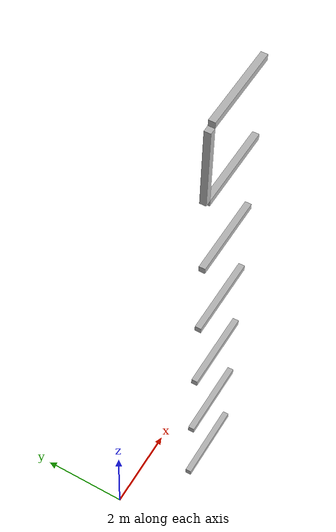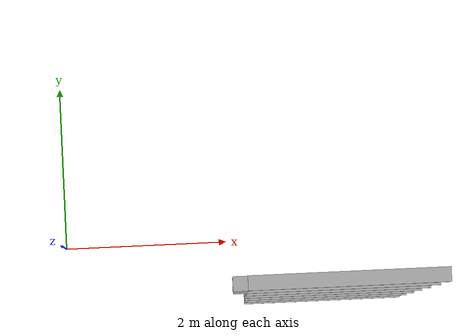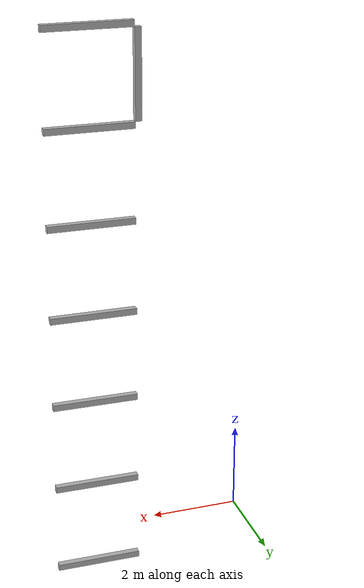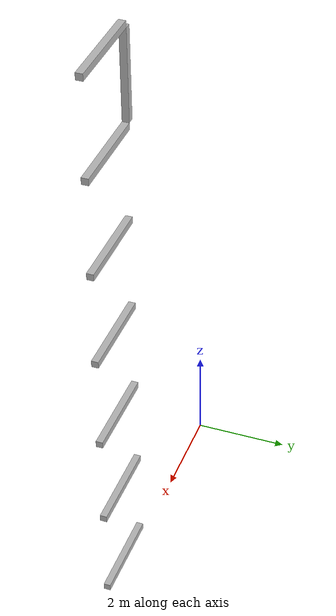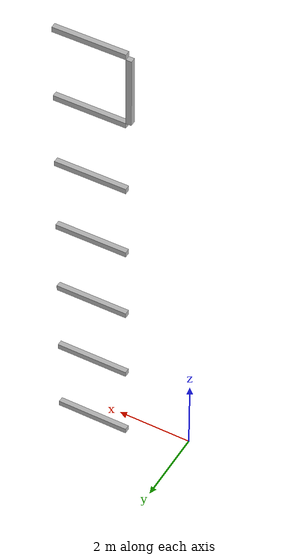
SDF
<sdf version="1.7">
 <world name="default">
  <model name="orthogonal_747_2.000.15_TS">
   <static>1</static>
   <link name="x_link_0_2_4">
    <inertial>
     <mass>1</mass>
     <inertia>
      <ixx>0.166667</ixx>
      <ixy>0</ixy>
      <ixz>0</ixz>
      <iyy>0.166667</iyy>
      <iyz>0</iyz>
      <izz>0.166667</izz>
     </inertia>
    </inertial>
    <pose>9.675 4.3 1.075 0 -0 0</pose>
    <visual name="visual_0">
     <laser_retro>407</laser_retro>
     <geometry><box><size>2 1e-06 0.15</size></box></geometry>
     <material>
      <script><name>Gazebo/Grey</name><uri>file://media/materials/scripts/gazebo.material</uri></script>
      <shader type="pixel"><normal_map>__default__</normal_map></shader>
      <ambient>0.678 0.498 0.659 1</ambient>
      <diffuse>0.7 0.7 0.7 1</diffuse>
      <specular>0.01 0.01 0.01 1</specular>
      <emissive>0 0 0 1</emissive>
     </material>
     <pose>0 -0.075 0 0 -0 0</pose>
     <transparency>1</transparency>
    </visual>
    <visual name="visual_1">
     <laser_retro>408</laser_retro>
     <geometry><box><size>2 1e-06 0.15</size></box></geometry>
     <material>
      <script><name>Gazebo/Grey</name><uri>file://media/materials/scripts/gazebo.material</uri></script>
      <shader type="pixel"><normal_map>__default__</normal_map></shader>
      <ambient>0.447 0.624 0.812 1</ambient>
      <diffuse>0.7 0.7 0.7 1</diffuse>
      <specular>0.01 0.01 0.01 1</specular>
      <emissive>0 0 0 1</emissive>
     </material>
     <pose>0 0.075 0 0 -0 0</pose>
     <transparency>1</transparency>
    </visual>
    <visual name="visual_2">
     <laser_retro>409</laser_retro>
     <geometry><box><size>2 0.15 1e-06</size></box></geometry>
     <material>
      <script><name>Gazebo/Grey</name><uri>file://media/materials/scripts/gazebo.material</uri></script>
      <shader type="pixel"><normal_map>__default__</normal_map></shader>
      <ambient>0.988 0.686 0.243 1</ambient>
      <diffuse>0.7 0.7 0.7 1</diffuse>
      <specular>0.01 0.01 0.01 1</specular>
      <emissive>0 0 0 1</emissive>
     </material>
     <pose>0 0 -0.075 0 -0 0</pose>
     <transparency>1</transparency>
    </visual>
    <visual name="visual_3">
     <laser_retro>410</laser_retro>
     <geometry><box><size>1e-06 0.15 0.15</size></box></geometry>
     <material>
      <script><name>Gazebo/Grey</name><uri>file://media/materials/scripts/gazebo.material</uri></script>
      <shader type="pixel"><normal_map>__default__</normal_map></shader>
      <ambient>0.988 0.914 0.31 1</ambient>
      <diffuse>0.7 0.7 0.7 1</diffuse>
      <specular>0.01 0.01 0.01 1</specular>
      <emissive>0 0 0 1</emissive>
     </material>
     <pose>1 0 0 0 -0 0</pose>
     <transparency>1</transparency>
    </visual>
    <visual name="visual_4">
     <laser_retro>411</laser_retro>
     <geometry><box><size>2 0.15 1e-06</size></box></geometry>
     <material>
      <script><name>Gazebo/Grey</name><uri>file://media/materials/scripts/gazebo.material</uri></script>
      <shader type="pixel"><normal_map>__default__</normal_map></shader>
      <ambient>0.937 0.161 0.161 1</ambient>
      <diffuse>0.7 0.7 0.7 1</diffuse>
      <specular>0.01 0.01 0.01 1</specular>
      <emissive>0 0 0 1</emissive>
     </material>
     <pose>0 0 0.075 0 -0 0</pose>
     <transparency>1</transparency>
    </visual>
    <visual name="visual_5">
     <laser_retro>412</laser_retro>
     <geometry><box><size>1e-06 0.15 0.15</size></box></geometry>
     <material>
      <script><name>Gazebo/Grey</name><uri>file://media/materials/scripts/gazebo.material</uri></script>
      <shader type="pixel"><normal_map>__default__</normal_map></shader>
      <ambient>0.541 0.886 0.204 1</ambient>
      <diffuse>0.7 0.7 0.7 1</diffuse>
      <specular>0.01 0.01 0.01 1</specular>
      <emissive>0 0 0 1</emissive>
     </material>
     <pose>-1 0 0 0 -0 0</pose>
     <transparency>1</transparency>
    </visual>
    <visual name="visual_texture">
     <geometry><box><size>1.9998 0.149985 0.149985</size></box></geometry>
     <material>
      <script>
       <uri>model://BASE_MODELS/simple_block_v2_textured/materials/scripts</uri>
       <uri>model://BASE_MODELS/simple_block_v2_textured/materials/textures</uri>
       <name>metal</name>
      </script>
     </material>
     <laser_retro>413</laser_retro>
    </visual>
    <collision name="collision">
     <geometry><box><size>2 0.15 0.15</size></box></geometry>
     <surface>
      <friction>
       <ode><mu>1</mu><mu2>1</mu2><fdir1>0 0 0</fdir1><slip1>0</slip1><slip2>0</slip2></ode>
       <torsional>
        <coefficient>1</coefficient>
        <patch_radius>0</patch_radius>
        <surface_radius>0</surface_radius>
        <use_patch_radius>1</use_patch_radius>
        <ode><slip>0</slip></ode>
       </torsional>
      </friction>
      <bounce><restitution_coefficient>0</restitution_coefficient><threshold>1e+06</threshold></bounce>
      <contact>
       <collide_without_contact>0</collide_without_contact>
       <collide_without_contact_bitmask>1</collide_without_contact_bitmask>
       <collide_bitmask>1</collide_bitmask>
       <ode>
        <soft_cfm>0</soft_cfm>
        <soft_erp>0.2</soft_erp>
        <kp>1e+13</kp>
        <kd>1</kd>
        <max_vel>0.01</max_vel>
        <min_depth>0</min_depth>
       </ode>
       <bullet>
        <split_impulse>1</split_impulse>
        <split_impulse_penetration_threshold>-0.01</split_impulse_penetration_threshold>
        <soft_cfm>0</soft_cfm>
        <soft_erp>0.2</soft_erp>
        <kp>1e+13</kp>
        <kd>1</kd>
       </bullet>
      </contact>
     </surface>
    </collision>
   </link>
   <link name="x_link_1_2_4">
    <inertial>
     <mass>1</mass>
     <inertia>
      <ixx>0.166667</ixx>
      <ixy>0</ixy>
      <ixz>0</ixz>
      <iyy>0.166667</iyy>
      <iyz>0</iyz>
      <izz>0.166667</izz>
     </inertia>
    </inertial>
    <pose>9.675 4.3 3.225 0 -0 0</pose>
    <visual name="visual_0">
     <laser_retro>1233</laser_retro>
     <geometry><box><size>2 1e-06 0.15</size></box></geometry>
     <material>
      <script><name>Gazebo/Grey</name><uri>file://media/materials/scripts/gazebo.material</uri></script>
      <shader type="pixel"><normal_map>__default__</normal_map></shader>
      <ambient>0.678 0.498 0.659 1</ambient>
      <diffuse>0.7 0.7 0.7 1</diffuse>
      <specular>0.01 0.01 0.01 1</specular>
      <emissive>0 0 0 1</emissive>
     </material>
     <pose>0 -0.075 0 0 -0 0</pose>
     <transparency>1</transparency>
    </visual>
    <visual name="visual_1">
     <laser_retro>1234</laser_retro>
     <geometry><box><size>2 1e-06 0.15</size></box></geometry>
     <material>
      <script><name>Gazebo/Grey</name><uri>file://media/materials/scripts/gazebo.material</uri></script>
      <shader type="pixel"><normal_map>__default__</normal_map></shader>
      <ambient>0.447 0.624 0.812 1</ambient>
      <diffuse>0.7 0.7 0.7 1</diffuse>
      <specular>0.01 0.01 0.01 1</specular>
      <emissive>0 0 0 1</emissive>
     </material>
     <pose>0 0.075 0 0 -0 0</pose>
     <transparency>1</transparency>
    </visual>
    <visual name="visual_2">
     <laser_retro>1235</laser_retro>
     <geometry><box><size>2 0.15 1e-06</size></box></geometry>
     <material>
      <script><name>Gazebo/Grey</name><uri>file://media/materials/scripts/gazebo.material</uri></script>
      <shader type="pixel"><normal_map>__default__</normal_map></shader>
      <ambient>0.988 0.686 0.243 1</ambient>
      <diffuse>0.7 0.7 0.7 1</diffuse>
      <specular>0.01 0.01 0.01 1</specular>
      <emissive>0 0 0 1</emissive>
     </material>
     <pose>0 0 -0.075 0 -0 0</pose>
     <transparency>1</transparency>
    </visual>
    <visual name="visual_3">
     <laser_retro>1236</laser_retro>
     <geometry><box><size>1e-06 0.15 0.15</size></box></geometry>
     <material>
      <script><name>Gazebo/Grey</name><uri>file://media/materials/scripts/gazebo.material</uri></script>
      <shader type="pixel"><normal_map>__default__</normal_map></shader>
      <ambient>0.988 0.914 0.31 1</ambient>
      <diffuse>0.7 0.7 0.7 1</diffuse>
      <specular>0.01 0.01 0.01 1</specular>
      <emissive>0 0 0 1</emissive>
     </material>
     <pose>1 0 0 0 -0 0</pose>
     <transparency>1</transparency>
    </visual>
    <visual name="visual_4">
     <laser_retro>1237</laser_retro>
     <geometry><box><size>2 0.15 1e-06</size></box></geometry>
     <material>
      <script><name>Gazebo/Grey</name><uri>file://media/materials/scripts/gazebo.material</uri></script>
      <shader type="pixel"><normal_map>__default__</normal_map></shader>
      <ambient>0.937 0.161 0.161 1</ambient>
      <diffuse>0.7 0.7 0.7 1</diffuse>
      <specular>0.01 0.01 0.01 1</specular>
      <emissive>0 0 0 1</emissive>
     </material>
     <pose>0 0 0.075 0 -0 0</pose>
     <transparency>1</transparency>
    </visual>
    <visual name="visual_5">
     <laser_retro>1238</laser_retro>
     <geometry><box><size>1e-06 0.15 0.15</size></box></geometry>
     <material>
      <script><name>Gazebo/Grey</name><uri>file://media/materials/scripts/gazebo.material</uri></script>
      <shader type="pixel"><normal_map>__default__</normal_map></shader>
      <ambient>0.541 0.886 0.204 1</ambient>
      <diffuse>0.7 0.7 0.7 1</diffuse>
      <specular>0.01 0.01 0.01 1</specular>
      <emissive>0 0 0 1</emissive>
     </material>
     <pose>-1 0 0 0 -0 0</pose>
     <transparency>1</transparency>
    </visual>
    <visual name="visual_texture">
     <geometry><box><size>1.9998 0.149985 0.149985</size></box></geometry>
     <material>
      <script>
       <uri>model://BASE_MODELS/simple_block_v2_textured/materials/scripts</uri>
       <uri>model://BASE_MODELS/simple_block_v2_textured/materials/textures</uri>
       <name>metal</name>
      </script>
     </material>
     <laser_retro>1239</laser_retro>
    </visual>
    <collision name="collision">
     <geometry><box><size>2 0.15 0.15</size></box></geometry>
     <surface>
      <friction>
       <ode><mu>1</mu><mu2>1</mu2><fdir1>0 0 0</fdir1><slip1>0</slip1><slip2>0</slip2></ode>
       <torsional>
        <coefficient>1</coefficient>
        <patch_radius>0</patch_radius>
        <surface_radius>0</surface_radius>
        <use_patch_radius>1</use_patch_radius>
        <ode><slip>0</slip></ode>
       </torsional>
      </friction>
      <bounce><restitution_coefficient>0</restitution_coefficient><threshold>1e+06</threshold></bounce>
      <contact>
       <collide_without_contact>0</collide_without_contact>
       <collide_without_contact_bitmask>1</collide_without_contact_bitmask>
       <collide_bitmask>1</collide_bitmask>
       <ode>
        <soft_cfm>0</soft_cfm>
        <soft_erp>0.2</soft_erp>
        <kp>1e+13</kp>
        <kd>1</kd>
        <max_vel>0.01</max_vel>
        <min_depth>0</min_depth>
       </ode>
       <bullet>
        <split_impulse>1</split_impulse>
        <split_impulse_penetration_threshold>-0.01</split_impulse_penetration_threshold>
        <soft_cfm>0</soft_cfm>
        <soft_erp>0.2</soft_erp>
        <kp>1e+13</kp>
        <kd>1</kd>
       </bullet>
      </contact>
     </surface>
    </collision>
   </link>
   <link name="x_link_2_2_4">
    <inertial>
     <mass>1</mass>
     <inertia>
      <ixx>0.166667</ixx>
      <ixy>0</ixy>
      <ixz>0</ixz>
      <iyy>0.166667</iyy>
      <iyz>0</iyz>
      <izz>0.166667</izz>
     </inertia>
    </inertial>
    <pose>9.675 4.3 5.375 0 -0 0</pose>
    <visual name="visual_0">
     <laser_retro>2136</laser_retro>
     <geometry><box><size>2 1e-06 0.15</size></box></geometry>
     <material>
      <script><name>Gazebo/Grey</name><uri>file://media/materials/scripts/gazebo.material</uri></script>
      <shader type="pixel"><normal_map>__default__</normal_map></shader>
      <ambient>0.678 0.498 0.659 1</ambient>
      <diffuse>0.7 0.7 0.7 1</diffuse>
      <specular>0.01 0.01 0.01 1</specular>
      <emissive>0 0 0 1</emissive>
     </material>
     <pose>0 -0.075 0 0 -0 0</pose>
     <transparency>1</transparency>
    </visual>
    <visual name="visual_1">
     <laser_retro>2137</laser_retro>
     <geometry><box><size>2 1e-06 0.15</size></box></geometry>
     <material>
      <script><name>Gazebo/Grey</name><uri>file://media/materials/scripts/gazebo.material</uri></script>
      <shader type="pixel"><normal_map>__default__</normal_map></shader>
      <ambient>0.447 0.624 0.812 1</ambient>
      <diffuse>0.7 0.7 0.7 1</diffuse>
      <specular>0.01 0.01 0.01 1</specular>
      <emissive>0 0 0 1</emissive>
     </material>
     <pose>0 0.075 0 0 -0 0</pose>
     <transparency>1</transparency>
    </visual>
    <visual name="visual_2">
     <laser_retro>2138</laser_retro>
     <geometry><box><size>2 0.15 1e-06</size></box></geometry>
     <material>
      <script><name>Gazebo/Grey</name><uri>file://media/materials/scripts/gazebo.material</uri></script>
      <shader type="pixel"><normal_map>__default__</normal_map></shader>
      <ambient>0.988 0.686 0.243 1</ambient>
      <diffuse>0.7 0.7 0.7 1</diffuse>
      <specular>0.01 0.01 0.01 1</specular>
      <emissive>0 0 0 1</emissive>
     </material>
     <pose>0 0 -0.075 0 -0 0</pose>
     <transparency>1</transparency>
    </visual>
    <visual name="visual_3">
     <laser_retro>2139</laser_retro>
     <geometry><box><size>1e-06 0.15 0.15</size></box></geometry>
     <material>
      <script><name>Gazebo/Grey</name><uri>file://media/materials/scripts/gazebo.material</uri></script>
      <shader type="pixel"><normal_map>__default__</normal_map></shader>
      <ambient>0.988 0.914 0.31 1</ambient>
      <diffuse>0.7 0.7 0.7 1</diffuse>
      <specular>0.01 0.01 0.01 1</specular>
      <emissive>0 0 0 1</emissive>
     </material>
     <pose>1 0 0 0 -0 0</pose>
     <transparency>1</transparency>
    </visual>
    <visual name="visual_4">
     <laser_retro>2140</laser_retro>
     <geometry><box><size>2 0.15 1e-06</size></box></geometry>
     <material>
      <script><name>Gazebo/Grey</name><uri>file://media/materials/scripts/gazebo.material</uri></script>
      <shader type="pixel"><normal_map>__default__</normal_map></shader>
      <ambient>0.937 0.161 0.161 1</ambient>
      <diffuse>0.7 0.7 0.7 1</diffuse>
      <specular>0.01 0.01 0.01 1</specular>
      <emissive>0 0 0 1</emissive>
     </material>
     <pose>0 0 0.075 0 -0 0</pose>
     <transparency>1</transparency>
    </visual>
    <visual name="visual_5">
     <laser_retro>2141</laser_retro>
     <geometry><box><size>1e-06 0.15 0.15</size></box></geometry>
     <material>
      <script><name>Gazebo/Grey</name><uri>file://media/materials/scripts/gazebo.material</uri></script>
      <shader type="pixel"><normal_map>__default__</normal_map></shader>
      <ambient>0.541 0.886 0.204 1</ambient>
      <diffuse>0.7 0.7 0.7 1</diffuse>
      <specular>0.01 0.01 0.01 1</specular>
      <emissive>0 0 0 1</emissive>
     </material>
     <pose>-1 0 0 0 -0 0</pose>
     <transparency>1</transparency>
    </visual>
    <visual name="visual_texture">
     <geometry><box><size>1.9998 0.149985 0.149985</size></box></geometry>
     <material>
      <script>
       <uri>model://BASE_MODELS/simple_block_v2_textured/materials/scripts</uri>
       <uri>model://BASE_MODELS/simple_block_v2_textured/materials/textures</uri>
       <name>metal</name>
      </script>
     </material>
     <laser_retro>2142</laser_retro>
    </visual>
    <collision name="collision">
     <geometry><box><size>2 0.15 0.15</size></box></geometry>
     <surface>
      <friction>
       <ode><mu>1</mu><mu2>1</mu2><fdir1>0 0 0</fdir1><slip1>0</slip1><slip2>0</slip2></ode>
       <torsional>
        <coefficient>1</coefficient>
        <patch_radius>0</patch_radius>
        <surface_radius>0</surface_radius>
        <use_patch_radius>1</use_patch_radius>
        <ode><slip>0</slip></ode>
       </torsional>
      </friction>
      <bounce><restitution_coefficient>0</restitution_coefficient><threshold>1e+06</threshold></bounce>
      <contact>
       <collide_without_contact>0</collide_without_contact>
       <collide_without_contact_bitmask>1</collide_without_contact_bitmask>
       <collide_bitmask>1</collide_bitmask>
       <ode>
        <soft_cfm>0</soft_cfm>
        <soft_erp>0.2</soft_erp>
        <kp>1e+13</kp>
        <kd>1</kd>
        <max_vel>0.01</max_vel>
        <min_depth>0</min_depth>
       </ode>
       <bullet>
        <split_impulse>1</split_impulse>
        <split_impulse_penetration_threshold>-0.01</split_impulse_penetration_threshold>
        <soft_cfm>0</soft_cfm>
        <soft_erp>0.2</soft_erp>
        <kp>1e+13</kp>
        <kd>1</kd>
       </bullet>
      </contact>
     </surface>
    </collision>
   </link>
   <link name="x_link_3_2_4">
    <inertial>
     <mass>1</mass>
     <inertia>
      <ixx>0.166667</ixx>
      <ixy>0</ixy>
      <ixz>0</ixz>
      <iyy>0.166667</iyy>
      <iyz>0</iyz>
      <izz>0.166667</izz>
     </inertia>
    </inertial>
    <pose>9.675 4.3 7.525 0 -0 0</pose>
    <visual name="visual_0">
     <laser_retro>3039</laser_retro>
     <geometry><box><size>2 1e-06 0.15</size></box></geometry>
     <material>
      <script><name>Gazebo/Grey</name><uri>file://media/materials/scripts/gazebo.material</uri></script>
      <shader type="pixel"><normal_map>__default__</normal_map></shader>
      <ambient>0.678 0.498 0.659 1</ambient>
      <diffuse>0.7 0.7 0.7 1</diffuse>
      <specular>0.01 0.01 0.01 1</specular>
      <emissive>0 0 0 1</emissive>
     </material>
     <pose>0 -0.075 0 0 -0 0</pose>
     <transparency>1</transparency>
    </visual>
    <visual name="visual_1">
     <laser_retro>3040</laser_retro>
     <geometry><box><size>2 1e-06 0.15</size></box></geometry>
     <material>
      <script><name>Gazebo/Grey</name><uri>file://media/materials/scripts/gazebo.material</uri></script>
      <shader type="pixel"><normal_map>__default__</normal_map></shader>
      <ambient>0.447 0.624 0.812 1</ambient>
      <diffuse>0.7 0.7 0.7 1</diffuse>
      <specular>0.01 0.01 0.01 1</specular>
      <emissive>0 0 0 1</emissive>
     </material>
     <pose>0 0.075 0 0 -0 0</pose>
     <transparency>1</transparency>
    </visual>
    <visual name="visual_2">
     <laser_retro>3041</laser_retro>
     <geometry><box><size>2 0.15 1e-06</size></box></geometry>
     <material>
      <script><name>Gazebo/Grey</name><uri>file://media/materials/scripts/gazebo.material</uri></script>
      <shader type="pixel"><normal_map>__default__</normal_map></shader>
      <ambient>0.988 0.686 0.243 1</ambient>
      <diffuse>0.7 0.7 0.7 1</diffuse>
      <specular>0.01 0.01 0.01 1</specular>
      <emissive>0 0 0 1</emissive>
     </material>
     <pose>0 0 -0.075 0 -0 0</pose>
     <transparency>1</transparency>
    </visual>
    <visual name="visual_3">
     <laser_retro>3042</laser_retro>
     <geometry><box><size>1e-06 0.15 0.15</size></box></geometry>
     <material>
      <script><name>Gazebo/Grey</name><uri>file://media/materials/scripts/gazebo.material</uri></script>
      <shader type="pixel"><normal_map>__default__</normal_map></shader>
      <ambient>0.988 0.914 0.31 1</ambient>
      <diffuse>0.7 0.7 0.7 1</diffuse>
      <specular>0.01 0.01 0.01 1</specular>
      <emissive>0 0 0 1</emissive>
     </material>
     <pose>1 0 0 0 -0 0</pose>
     <transparency>1</transparency>
    </visual>
    <visual name="visual_4">
     <laser_retro>3043</laser_retro>
     <geometry><box><size>2 0.15 1e-06</size></box></geometry>
     <material>
      <script><name>Gazebo/Grey</name><uri>file://media/materials/scripts/gazebo.material</uri></script>
      <shader type="pixel"><normal_map>__default__</normal_map></shader>
      <ambient>0.937 0.161 0.161 1</ambient>
      <diffuse>0.7 0.7 0.7 1</diffuse>
      <specular>0.01 0.01 0.01 1</specular>
      <emissive>0 0 0 1</emissive>
     </material>
     <pose>0 0 0.075 0 -0 0</pose>
     <transparency>1</transparency>
    </visual>
    <visual name="visual_5">
     <laser_retro>3044</laser_retro>
     <geometry><box><size>1e-06 0.15 0.15</size></box></geometry>
     <material>
      <script><name>Gazebo/Grey</name><uri>file://media/materials/scripts/gazebo.material</uri></script>
      <shader type="pixel"><normal_map>__default__</normal_map></shader>
      <ambient>0.541 0.886 0.204 1</ambient>
      <diffuse>0.7 0.7 0.7 1</diffuse>
      <specular>0.01 0.01 0.01 1</specular>
      <emissive>0 0 0 1</emissive>
     </material>
     <pose>-1 0 0 0 -0 0</pose>
     <transparency>1</transparency>
    </visual>
    <visual name="visual_texture">
     <geometry><box><size>1.9998 0.149985 0.149985</size></box></geometry>
     <material>
      <script>
       <uri>model://BASE_MODELS/simple_block_v2_textured/materials/scripts</uri>
       <uri>model://BASE_MODELS/simple_block_v2_textured/materials/textures</uri>
       <name>metal</name>
      </script>
     </material>
     <laser_retro>3045</laser_retro>
    </visual>
    <collision name="collision">
     <geometry><box><size>2 0.15 0.15</size></box></geometry>
     <surface>
      <friction>
       <ode><mu>1</mu><mu2>1</mu2><fdir1>0 0 0</fdir1><slip1>0</slip1><slip2>0</slip2></ode>
       <torsional>
        <coefficient>1</coefficient>
        <patch_radius>0</patch_radius>
        <surface_radius>0</surface_radius>
        <use_patch_radius>1</use_patch_radius>
        <ode><slip>0</slip></ode>
       </torsional>
      </friction>
      <bounce><restitution_coefficient>0</restitution_coefficient><threshold>1e+06</threshold></bounce>
      <contact>
       <collide_without_contact>0</collide_without_contact>
       <collide_without_contact_bitmask>1</collide_without_contact_bitmask>
       <collide_bitmask>1</collide_bitmask>
       <ode>
        <soft_cfm>0</soft_cfm>
        <soft_erp>0.2</soft_erp>
        <kp>1e+13</kp>
        <kd>1</kd>
        <max_vel>0.01</max_vel>
        <min_depth>0</min_depth>
       </ode>
       <bullet>
        <split_impulse>1</split_impulse>
        <split_impulse_penetration_threshold>-0.01</split_impulse_penetration_threshold>
        <soft_cfm>0</soft_cfm>
        <soft_erp>0.2</soft_erp>
        <kp>1e+13</kp>
        <kd>1</kd>
       </bullet>
      </contact>
     </surface>
    </collision>
   </link>
   <link name="x_link_4_2_4">
    <inertial>
     <mass>1</mass>
     <inertia>
      <ixx>0.166667</ixx>
      <ixy>0</ixy>
      <ixz>0</ixz>
      <iyy>0.166667</iyy>
      <iyz>0</iyz>
      <izz>0.166667</izz>
     </inertia>
    </inertial>
    <pose>9.675 4.3 9.675 0 -0 0</pose>
    <visual name="visual_0">
     <laser_retro>3942</laser_retro>
     <geometry><box><size>2 1e-06 0.15</size></box></geometry>
     <material>
      <script><name>Gazebo/Grey</name><uri>file://media/materials/scripts/gazebo.material</uri></script>
      <shader type="pixel"><normal_map>__default__</normal_map></shader>
      <ambient>0.678 0.498 0.659 1</ambient>
      <diffuse>0.7 0.7 0.7 1</diffuse>
      <specular>0.01 0.01 0.01 1</specular>
      <emissive>0 0 0 1</emissive>
     </material>
     <pose>0 -0.075 0 0 -0 0</pose>
     <transparency>1</transparency>
    </visual>
    <visual name="visual_1">
     <laser_retro>3943</laser_retro>
     <geometry><box><size>2 1e-06 0.15</size></box></geometry>
     <material>
      <script><name>Gazebo/Grey</name><uri>file://media/materials/scripts/gazebo.material</uri></script>
      <shader type="pixel"><normal_map>__default__</normal_map></shader>
      <ambient>0.447 0.624 0.812 1</ambient>
      <diffuse>0.7 0.7 0.7 1</diffuse>
      <specular>0.01 0.01 0.01 1</specular>
      <emissive>0 0 0 1</emissive>
     </material>
     <pose>0 0.075 0 0 -0 0</pose>
     <transparency>1</transparency>
    </visual>
    <visual name="visual_2">
     <laser_retro>3944</laser_retro>
     <geometry><box><size>2 0.15 1e-06</size></box></geometry>
     <material>
      <script><name>Gazebo/Grey</name><uri>file://media/materials/scripts/gazebo.material</uri></script>
      <shader type="pixel"><normal_map>__default__</normal_map></shader>
      <ambient>0.988 0.686 0.243 1</ambient>
      <diffuse>0.7 0.7 0.7 1</diffuse>
      <specular>0.01 0.01 0.01 1</specular>
      <emissive>0 0 0 1</emissive>
     </material>
     <pose>0 0 -0.075 0 -0 0</pose>
     <transparency>1</transparency>
    </visual>
    <visual name="visual_3">
     <laser_retro>3945</laser_retro>
     <geometry><box><size>1e-06 0.15 0.15</size></box></geometry>
     <material>
      <script><name>Gazebo/Grey</name><uri>file://media/materials/scripts/gazebo.material</uri></script>
      <shader type="pixel"><normal_map>__default__</normal_map></shader>
      <ambient>0.988 0.914 0.31 1</ambient>
      <diffuse>0.7 0.7 0.7 1</diffuse>
      <specular>0.01 0.01 0.01 1</specular>
      <emissive>0 0 0 1</emissive>
     </material>
     <pose>1 0 0 0 -0 0</pose>
     <transparency>1</transparency>
    </visual>
    <visual name="visual_4">
     <laser_retro>3946</laser_retro>
     <geometry><box><size>2 0.15 1e-06</size></box></geometry>
     <material>
      <script><name>Gazebo/Grey</name><uri>file://media/materials/scripts/gazebo.material</uri></script>
      <shader type="pixel"><normal_map>__default__</normal_map></shader>
      <ambient>0.937 0.161 0.161 1</ambient>
      <diffuse>0.7 0.7 0.7 1</diffuse>
      <specular>0.01 0.01 0.01 1</specular>
      <emissive>0 0 0 1</emissive>
     </material>
     <pose>0 0 0.075 0 -0 0</pose>
     <transparency>1</transparency>
    </visual>
    <visual name="visual_5">
     <laser_retro>3947</laser_retro>
     <geometry><box><size>1e-06 0.15 0.15</size></box></geometry>
     <material>
      <script><name>Gazebo/Grey</name><uri>file://media/materials/scripts/gazebo.material</uri></script>
      <shader type="pixel"><normal_map>__default__</normal_map></shader>
      <ambient>0.541 0.886 0.204 1</ambient>
      <diffuse>0.7 0.7 0.7 1</diffuse>
      <specular>0.01 0.01 0.01 1</specular>
      <emissive>0 0 0 1</emissive>
     </material>
     <pose>-1 0 0 0 -0 0</pose>
     <transparency>1</transparency>
    </visual>
    <visual name="visual_texture">
     <geometry><box><size>1.9998 0.149985 0.149985</size></box></geometry>
     <material>
      <script>
       <uri>model://BASE_MODELS/simple_block_v2_textured/materials/scripts</uri>
       <uri>model://BASE_MODELS/simple_block_v2_textured/materials/textures</uri>
       <name>metal</name>
      </script>
     </material>
     <laser_retro>3948</laser_retro>
    </visual>
    <collision name="collision">
     <geometry><box><size>2 0.15 0.15</size></box></geometry>
     <surface>
      <friction>
       <ode><mu>1</mu><mu2>1</mu2><fdir1>0 0 0</fdir1><slip1>0</slip1><slip2>0</slip2></ode>
       <torsional>
        <coefficient>1</coefficient>
        <patch_radius>0</patch_radius>
        <surface_radius>0</surface_radius>
        <use_patch_radius>1</use_patch_radius>
        <ode><slip>0</slip></ode>
       </torsional>
      </friction>
      <bounce><restitution_coefficient>0</restitution_coefficient><threshold>1e+06</threshold></bounce>
      <contact>
       <collide_without_contact>0</collide_without_contact>
       <collide_without_contact_bitmask>1</collide_without_contact_bitmask>
       <collide_bitmask>1</collide_bitmask>
       <ode>
        <soft_cfm>0</soft_cfm>
        <soft_erp>0.2</soft_erp>
        <kp>1e+13</kp>
        <kd>1</kd>
        <max_vel>0.01</max_vel>
        <min_depth>0</min_depth>
       </ode>
       <bullet>
        <split_impulse>1</split_impulse>
        <split_impulse_penetration_threshold>-0.01</split_impulse_penetration_threshold>
        <soft_cfm>0</soft_cfm>
        <soft_erp>0.2</soft_erp>
        <kp>1e+13</kp>
        <kd>1</kd>
       </bullet>
      </contact>
     </surface>
    </collision>
   </link>
   <link name="x_link_5_2_4">
    <inertial>
     <mass>1</mass>
     <inertia>
      <ixx>0.166667</ixx>
      <ixy>0</ixy>
      <ixz>0</ixz>
      <iyy>0.166667</iyy>
      <iyz>0</iyz>
      <izz>0.166667</izz>
     </inertia>
    </inertial>
    <pose>9.675 4.3 11.825 0 -0 0</pose>
    <visual name="visual_0">
     <laser_retro>4845</laser_retro>
     <geometry><box><size>2 1e-06 0.15</size></box></geometry>
     <material>
      <script><name>Gazebo/Grey</name><uri>file://media/materials/scripts/gazebo.material</uri></script>
      <shader type="pixel"><normal_map>__default__</normal_map></shader>
      <ambient>0.678 0.498 0.659 1</ambient>
      <diffuse>0.7 0.7 0.7 1</diffuse>
      <specular>0.01 0.01 0.01 1</specular>
      <emissive>0 0 0 1</emissive>
     </material>
     <pose>0 -0.075 0 0 -0 0</pose>
     <transparency>1</transparency>
    </visual>
    <visual name="visual_1">
     <laser_retro>4846</laser_retro>
     <geometry><box><size>2 1e-06 0.15</size></box></geometry>
     <material>
      <script><name>Gazebo/Grey</name><uri>file://media/materials/scripts/gazebo.material</uri></script>
      <shader type="pixel"><normal_map>__default__</normal_map></shader>
      <ambient>0.447 0.624 0.812 1</ambient>
      <diffuse>0.7 0.7 0.7 1</diffuse>
      <specular>0.01 0.01 0.01 1</specular>
      <emissive>0 0 0 1</emissive>
     </material>
     <pose>0 0.075 0 0 -0 0</pose>
     <transparency>1</transparency>
    </visual>
    <visual name="visual_2">
     <laser_retro>4847</laser_retro>
     <geometry><box><size>2 0.15 1e-06</size></box></geometry>
     <material>
      <script><name>Gazebo/Grey</name><uri>file://media/materials/scripts/gazebo.material</uri></script>
      <shader type="pixel"><normal_map>__default__</normal_map></shader>
      <ambient>0.988 0.686 0.243 1</ambient>
      <diffuse>0.7 0.7 0.7 1</diffuse>
      <specular>0.01 0.01 0.01 1</specular>
      <emissive>0 0 0 1</emissive>
     </material>
     <pose>0 0 -0.075 0 -0 0</pose>
     <transparency>1</transparency>
    </visual>
    <visual name="visual_3">
     <laser_retro>4848</laser_retro>
     <geometry><box><size>1e-06 0.15 0.15</size></box></geometry>
     <material>
      <script><name>Gazebo/Grey</name><uri>file://media/materials/scripts/gazebo.material</uri></script>
      <shader type="pixel"><normal_map>__default__</normal_map></shader>
      <ambient>0.988 0.914 0.31 1</ambient>
      <diffuse>0.7 0.7 0.7 1</diffuse>
      <specular>0.01 0.01 0.01 1</specular>
      <emissive>0 0 0 1</emissive>
     </material>
     <pose>1 0 0 0 -0 0</pose>
     <transparency>1</transparency>
    </visual>
    <visual name="visual_4">
     <laser_retro>4849</laser_retro>
     <geometry><box><size>2 0.15 1e-06</size></box></geometry>
     <material>
      <script><name>Gazebo/Grey</name><uri>file://media/materials/scripts/gazebo.material</uri></script>
      <shader type="pixel"><normal_map>__default__</normal_map></shader>
      <ambient>0.937 0.161 0.161 1</ambient>
      <diffuse>0.7 0.7 0.7 1</diffuse>
      <specular>0.01 0.01 0.01 1</specular>
      <emissive>0 0 0 1</emissive>
     </material>
     <pose>0 0 0.075 0 -0 0</pose>
     <transparency>1</transparency>
    </visual>
    <visual name="visual_5">
     <laser_retro>4850</laser_retro>
     <geometry><box><size>1e-06 0.15 0.15</size></box></geometry>
     <material>
      <script><name>Gazebo/Grey</name><uri>file://media/materials/scripts/gazebo.material</uri></script>
      <shader type="pixel"><normal_map>__default__</normal_map></shader>
      <ambient>0.541 0.886 0.204 1</ambient>
      <diffuse>0.7 0.7 0.7 1</diffuse>
      <specular>0.01 0.01 0.01 1</specular>
      <emissive>0 0 0 1</emissive>
     </material>
     <pose>-1 0 0 0 -0 0</pose>
     <transparency>1</transparency>
    </visual>
    <visual name="visual_texture">
     <geometry><box><size>1.9998 0.149985 0.149985</size></box></geometry>
     <material>
      <script>
       <uri>model://BASE_MODELS/simple_block_v2_textured/materials/scripts</uri>
       <uri>model://BASE_MODELS/simple_block_v2_textured/materials/textures</uri>
       <name>metal</name>
      </script>
     </material>
     <laser_retro>4851</laser_retro>
    </visual>
    <collision name="collision">
     <geometry><box><size>2 0.15 0.15</size></box></geometry>
     <surface>
      <friction>
       <ode><mu>1</mu><mu2>1</mu2><fdir1>0 0 0</fdir1><slip1>0</slip1><slip2>0</slip2></ode>
       <torsional>
        <coefficient>1</coefficient>
        <patch_radius>0</patch_radius>
        <surface_radius>0</surface_radius>
        <use_patch_radius>1</use_patch_radius>
        <ode><slip>0</slip></ode>
       </torsional>
      </friction>
      <bounce><restitution_coefficient>0</restitution_coefficient><threshold>1e+06</threshold></bounce>
      <contact>
       <collide_without_contact>0</collide_without_contact>
       <collide_without_contact_bitmask>1</collide_without_contact_bitmask>
       <collide_bitmask>1</collide_bitmask>
       <ode>
        <soft_cfm>0</soft_cfm>
        <soft_erp>0.2</soft_erp>
        <kp>1e+13</kp>
        <kd>1</kd>
        <max_vel>0.01</max_vel>
        <min_depth>0</min_depth>
       </ode>
       <bullet>
        <split_impulse>1</split_impulse>
        <split_impulse_penetration_threshold>-0.01</split_impulse_penetration_threshold>
        <soft_cfm>0</soft_cfm>
        <soft_erp>0.2</soft_erp>
        <kp>1e+13</kp>
        <kd>1</kd>
       </bullet>
      </contact>
     </surface>
    </collision>
   </link>
   <link name="x_link_6_2_4">
    <inertial>
     <mass>1</mass>
     <inertia>
      <ixx>0.166667</ixx>
      <ixy>0</ixy>
      <ixz>0</ixz>
      <iyy>0.166667</iyy>
      <iyz>0</iyz>
      <izz>0.166667</izz>
     </inertia>
    </inertial>
    <pose>9.675 4.3 13.975 0 -0 0</pose>
    <visual name="visual_0">
     <laser_retro>5811</laser_retro>
     <geometry><box><size>2 1e-06 0.15</size></box></geometry>
     <material>
      <script><name>Gazebo/Grey</name><uri>file://media/materials/scripts/gazebo.material</uri></script>
      <shader type="pixel"><normal_map>__default__</normal_map></shader>
      <ambient>0.678 0.498 0.659 1</ambient>
      <diffuse>0.7 0.7 0.7 1</diffuse>
      <specular>0.01 0.01 0.01 1</specular>
      <emissive>0 0 0 1</emissive>
     </material>
     <pose>0 -0.075 0 0 -0 0</pose>
     <transparency>1</transparency>
    </visual>
    <visual name="visual_1">
     <laser_retro>5812</laser_retro>
     <geometry><box><size>2 1e-06 0.15</size></box></geometry>
     <material>
      <script><name>Gazebo/Grey</name><uri>file://media/materials/scripts/gazebo.material</uri></script>
      <shader type="pixel"><normal_map>__default__</normal_map></shader>
      <ambient>0.447 0.624 0.812 1</ambient>
      <diffuse>0.7 0.7 0.7 1</diffuse>
      <specular>0.01 0.01 0.01 1</specular>
      <emissive>0 0 0 1</emissive>
     </material>
     <pose>0 0.075 0 0 -0 0</pose>
     <transparency>1</transparency>
    </visual>
    <visual name="visual_2">
     <laser_retro>5813</laser_retro>
     <geometry><box><size>2 0.15 1e-06</size></box></geometry>
     <material>
      <script><name>Gazebo/Grey</name><uri>file://media/materials/scripts/gazebo.material</uri></script>
      <shader type="pixel"><normal_map>__default__</normal_map></shader>
      <ambient>0.988 0.686 0.243 1</ambient>
      <diffuse>0.7 0.7 0.7 1</diffuse>
      <specular>0.01 0.01 0.01 1</specular>
      <emissive>0 0 0 1</emissive>
     </material>
     <pose>0 0 -0.075 0 -0 0</pose>
     <transparency>1</transparency>
    </visual>
    <visual name="visual_3">
     <laser_retro>5814</laser_retro>
     <geometry><box><size>1e-06 0.15 0.15</size></box></geometry>
     <material>
      <script><name>Gazebo/Grey</name><uri>file://media/materials/scripts/gazebo.material</uri></script>
      <shader type="pixel"><normal_map>__default__</normal_map></shader>
      <ambient>0.988 0.914 0.31 1</ambient>
      <diffuse>0.7 0.7 0.7 1</diffuse>
      <specular>0.01 0.01 0.01 1</specular>
      <emissive>0 0 0 1</emissive>
     </material>
     <pose>1 0 0 0 -0 0</pose>
     <transparency>1</transparency>
    </visual>
    <visual name="visual_4">
     <laser_retro>5815</laser_retro>
     <geometry><box><size>2 0.15 1e-06</size></box></geometry>
     <material>
      <script><name>Gazebo/Grey</name><uri>file://media/materials/scripts/gazebo.material</uri></script>
      <shader type="pixel"><normal_map>__default__</normal_map></shader>
      <ambient>0.937 0.161 0.161 1</ambient>
      <diffuse>0.7 0.7 0.7 1</diffuse>
      <specular>0.01 0.01 0.01 1</specular>
      <emissive>0 0 0 1</emissive>
     </material>
     <pose>0 0 0.075 0 -0 0</pose>
     <transparency>1</transparency>
    </visual>
    <visual name="visual_5">
     <laser_retro>5816</laser_retro>
     <geometry><box><size>1e-06 0.15 0.15</size></box></geometry>
     <material>
      <script><name>Gazebo/Grey</name><uri>file://media/materials/scripts/gazebo.material</uri></script>
      <shader type="pixel"><normal_map>__default__</normal_map></shader>
      <ambient>0.541 0.886 0.204 1</ambient>
      <diffuse>0.7 0.7 0.7 1</diffuse>
      <specular>0.01 0.01 0.01 1</specular>
      <emissive>0 0 0 1</emissive>
     </material>
     <pose>-1 0 0 0 -0 0</pose>
     <transparency>1</transparency>
    </visual>
    <visual name="visual_texture">
     <geometry><box><size>1.9998 0.149985 0.149985</size></box></geometry>
     <material>
      <script>
       <uri>model://BASE_MODELS/simple_block_v2_textured/materials/scripts</uri>
       <uri>model://BASE_MODELS/simple_block_v2_textured/materials/textures</uri>
       <name>metal</name>
      </script>
     </material>
     <laser_retro>5817</laser_retro>
    </visual>
    <collision name="collision">
     <geometry><box><size>2 0.15 0.15</size></box></geometry>
     <surface>
      <friction>
       <ode><mu>1</mu><mu2>1</mu2><fdir1>0 0 0</fdir1><slip1>0</slip1><slip2>0</slip2></ode>
       <torsional>
        <coefficient>1</coefficient>
        <patch_radius>0</patch_radius>
        <surface_radius>0</surface_radius>
        <use_patch_radius>1</use_patch_radius>
        <ode><slip>0</slip></ode>
       </torsional>
      </friction>
      <bounce><restitution_coefficient>0</restitution_coefficient><threshold>1e+06</threshold></bounce>
      <contact>
       <collide_without_contact>0</collide_without_contact>
       <collide_without_contact_bitmask>1</collide_without_contact_bitmask>
       <collide_bitmask>1</collide_bitmask>
       <ode>
        <soft_cfm>0</soft_cfm>
        <soft_erp>0.2</soft_erp>
        <kp>1e+13</kp>
        <kd>1</kd>
        <max_vel>0.01</max_vel>
        <min_depth>0</min_depth>
       </ode>
       <bullet>
        <split_impulse>1</split_impulse>
        <split_impulse_penetration_threshold>-0.01</split_impulse_penetration_threshold>
        <soft_cfm>0</soft_cfm>
        <soft_erp>0.2</soft_erp>
        <kp>1e+13</kp>
        <kd>1</kd>
       </bullet>
      </contact>
     </surface>
    </collision>
   </link>
   <link name="z_link_6_2_4">
    <inertial>
     <mass>1</mass>
     <inertia>
      <ixx>0.166667</ixx>
      <ixy>0</ixy>
      <ixz>0</ixz>
      <iyy>0.166667</iyy>
      <iyz>0</iyz>
      <izz>0.166667</izz>
     </inertia>
    </inertial>
    <pose>8.6 4.3 12.9 0 -0 0</pose>
    <visual name="visual_0">
     <laser_retro>5832</laser_retro>
     <geometry><box><size>0.15 1e-06 2</size></box></geometry>
     <material>
      <script><name>Gazebo/Grey</name><uri>file://media/materials/scripts/gazebo.material</uri></script>
      <shader type="pixel"><normal_map>__default__</normal_map></shader>
      <ambient>0.678 0.498 0.659 1</ambient>
      <diffuse>0.7 0.7 0.7 1</diffuse>
      <specular>0.01 0.01 0.01 1</specular>
      <emissive>0 0 0 1</emissive>
     </material>
     <pose>0 -0.075 0 0 -0 0</pose>
     <transparency>1</transparency>
    </visual>
    <visual name="visual_1">
     <laser_retro>5833</laser_retro>
     <geometry><box><size>0.15 1e-06 2</size></box></geometry>
     <material>
      <script><name>Gazebo/Grey</name><uri>file://media/materials/scripts/gazebo.material</uri></script>
      <shader type="pixel"><normal_map>__default__</normal_map></shader>
      <ambient>0.447 0.624 0.812 1</ambient>
      <diffuse>0.7 0.7 0.7 1</diffuse>
      <specular>0.01 0.01 0.01 1</specular>
      <emissive>0 0 0 1</emissive>
     </material>
     <pose>0 0.075 0 0 -0 0</pose>
     <transparency>1</transparency>
    </visual>
    <visual name="visual_2">
     <laser_retro>5834</laser_retro>
     <geometry><box><size>0.15 0.15 1e-06</size></box></geometry>
     <material>
      <script><name>Gazebo/Grey</name><uri>file://media/materials/scripts/gazebo.material</uri></script>
      <shader type="pixel"><normal_map>__default__</normal_map></shader>
      <ambient>0.988 0.686 0.243 1</ambient>
      <diffuse>0.7 0.7 0.7 1</diffuse>
      <specular>0.01 0.01 0.01 1</specular>
      <emissive>0 0 0 1</emissive>
     </material>
     <pose>0 0 -1 0 -0 0</pose>
     <transparency>1</transparency>
    </visual>
    <visual name="visual_3">
     <laser_retro>5835</laser_retro>
     <geometry><box><size>1e-06 0.15 2</size></box></geometry>
     <material>
      <script><name>Gazebo/Grey</name><uri>file://media/materials/scripts/gazebo.material</uri></script>
      <shader type="pixel"><normal_map>__default__</normal_map></shader>
      <ambient>0.988 0.914 0.31 1</ambient>
      <diffuse>0.7 0.7 0.7 1</diffuse>
      <specular>0.01 0.01 0.01 1</specular>
      <emissive>0 0 0 1</emissive>
     </material>
     <pose>0.075 0 0 0 -0 0</pose>
     <transparency>1</transparency>
    </visual>
    <visual name="visual_4">
     <laser_retro>5836</laser_retro>
     <geometry><box><size>0.15 0.15 1e-06</size></box></geometry>
     <material>
      <script><name>Gazebo/Grey</name><uri>file://media/materials/scripts/gazebo.material</uri></script>
      <shader type="pixel"><normal_map>__default__</normal_map></shader>
      <ambient>0.937 0.161 0.161 1</ambient>
      <diffuse>0.7 0.7 0.7 1</diffuse>
      <specular>0.01 0.01 0.01 1</specular>
      <emissive>0 0 0 1</emissive>
     </material>
     <pose>0 0 1 0 -0 0</pose>
     <transparency>1</transparency>
    </visual>
    <visual name="visual_5">
     <laser_retro>5837</laser_retro>
     <geometry><box><size>1e-06 0.15 2</size></box></geometry>
     <material>
      <script><name>Gazebo/Grey</name><uri>file://media/materials/scripts/gazebo.material</uri></script>
      <shader type="pixel"><normal_map>__default__</normal_map></shader>
      <ambient>0.541 0.886 0.204 1</ambient>
      <diffuse>0.7 0.7 0.7 1</diffuse>
      <specular>0.01 0.01 0.01 1</specular>
      <emissive>0 0 0 1</emissive>
     </material>
     <pose>-0.075 0 0 0 -0 0</pose>
     <transparency>1</transparency>
    </visual>
    <visual name="visual_texture">
     <geometry><box><size>0.149985 0.149985 1.9998</size></box></geometry>
     <material>
      <script>
       <uri>model://BASE_MODELS/simple_block_v2_textured/materials/scripts</uri>
       <uri>model://BASE_MODELS/simple_block_v2_textured/materials/textures</uri>
       <name>metal</name>
      </script>
     </material>
     <laser_retro>5838</laser_retro>
    </visual>
    <collision name="collision">
     <geometry><box><size>0.15 0.15 2</size></box></geometry>
     <surface>
      <friction>
       <ode><mu>1</mu><mu2>1</mu2><fdir1>0 0 0</fdir1><slip1>0</slip1><slip2>0</slip2></ode>
       <torsional>
        <coefficient>1</coefficient>
        <patch_radius>0</patch_radius>
        <surface_radius>0</surface_radius>
        <use_patch_radius>1</use_patch_radius>
        <ode><slip>0</slip></ode>
       </torsional>
      </friction>
      <bounce><restitution_coefficient>0</restitution_coefficient><threshold>1e+06</threshold></bounce>
      <contact>
       <collide_without_contact>0</collide_without_contact>
       <collide_without_contact_bitmask>1</collide_without_contact_bitmask>
       <collide_bitmask>1</collide_bitmask>
       <ode>
        <soft_cfm>0</soft_cfm>
        <soft_erp>0.2</soft_erp>
        <kp>1e+13</kp>
        <kd>1</kd>
        <max_vel>0.01</max_vel>
        <min_depth>0</min_depth>
       </ode>
       <bullet>
        <split_impulse>1</split_impulse>
        <split_impulse_penetration_threshold>-0.01</split_impulse_penetration_threshold>
        <soft_cfm>0</soft_cfm>
        <soft_erp>0.2</soft_erp>
        <kp>1e+13</kp>
        <kd>1</kd>
       </bullet>
      </contact>
     </surface>
    </collision>
   </link>
   <pose>-6.47624 -5 -2.5 0 -0 0</pose>
  </model>
 </world>
</sdf>
